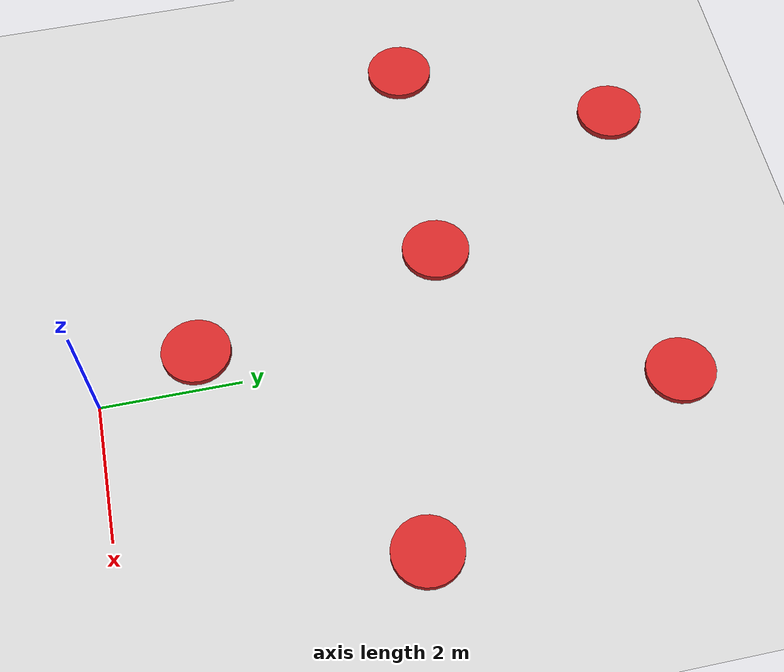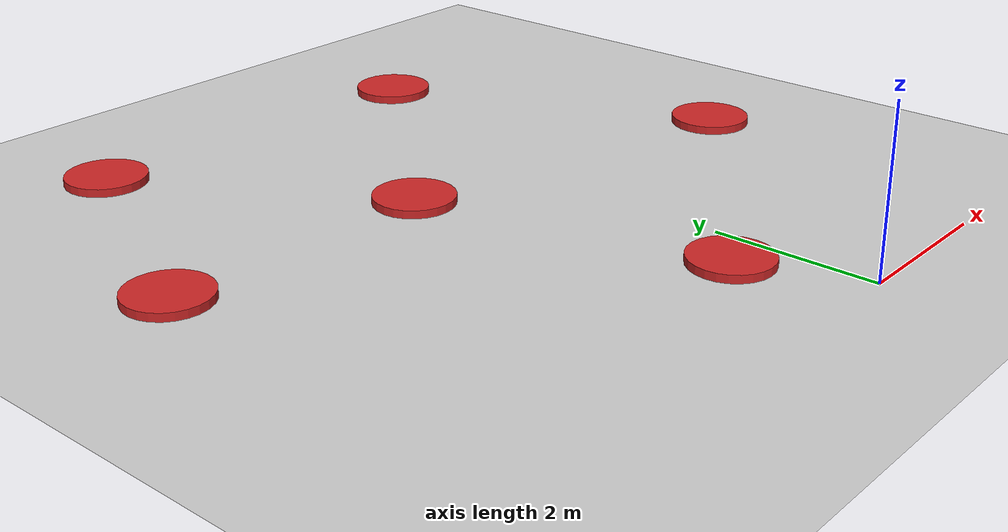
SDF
<sdf version="1.6">
 <world name="default">
  <light name="sun" type="directional">
   <pose>0 0 10 0 -0 0</pose>
   <diffuse>0.8 0.8 0.8 1</diffuse>
   <specular>0.2 0.2 0.2 1</specular>
   <attenuation>
    <range>1000</range>
    <constant>0.9</constant>
    <linear>0.01</linear>
    <quadratic>0.001</quadratic>
   </attenuation>
   <direction>-0.5 0.1 -0.9</direction>
  </light>
  <model name="ground_plane">
   <static>1</static>
   <link name="link">
    <collision name="collision">
     <geometry><plane><normal>0 0 1</normal><size>100 100</size></plane></geometry>
     <surface><friction><ode><mu>100</mu><mu2>50</mu2></ode></friction></surface>
    </collision>
    <visual name="visual">
     <cast_shadows>0</cast_shadows>
     <geometry><plane><normal>0 0 1</normal><size>100 100</size></plane></geometry>
     <material>
      <script><uri>file://media/materials/scripts/gazebo.material</uri><name>Gazebo/Grey</name></script>
     </material>
    </visual>
   </link>
  </model>
  <gravity>0 0 -9.8</gravity>
  <magnetic_field>6e-06 2.3e-05 -4.2e-05</magnetic_field>
  <atmosphere type="adiabatic"/>
  <physics name="default_physics" default="0" type="ode">
   <max_step_size>0.001</max_step_size>
   <real_time_factor>1</real_time_factor>
   <real_time_update_rate>1000</real_time_update_rate>
  </physics>
  <scene><ambient>0.4 0.4 0.4 1</ambient><background>0.7 0.7 0.7 1</background><shadows>1</shadows></scene>
  <spherical_coordinates>
   <surface_model>EARTH_WGS84</surface_model>
   <latitude_deg>0</latitude_deg>
   <longitude_deg>0</longitude_deg>
   <elevation>0</elevation>
   <heading_deg>0</heading_deg>
  </spherical_coordinates>
  <model name="unit_cylinder_0">
   <pose>2.97499 4.03015 0.05 0 -0 0</pose>
   <link name="link">
    <inertial>
     <mass>1</mass>
     <inertia><ixx>0.145833</ixx><ixy>0</ixy><ixz>0</ixz><iyy>0.145833</iyy><iyz>0</iyz><izz>0.125</izz></inertia>
    </inertial>
    <collision name="collision">
     <geometry><cylinder><radius>0.5</radius><length>0.1</length></cylinder></geometry>
    </collision>
    <visual name="visual">
     <geometry><cylinder><radius>0.5</radius><length>0.1</length></cylinder></geometry>
     <material>
      <script><name>Gazebo/Red</name><uri>file://media/materials/scripts/gazebo.material</uri></script>
     </material>
    </visual>
   </link>
  </model>
  <model name="unit_cylinder_1">
   <pose>1.09796 8.07725 0.05 0 -0 0</pose>
   <link name="link">
    <inertial>
     <mass>1</mass>
     <inertia><ixx>0.145833</ixx><ixy>0</ixy><ixz>0</ixz><iyy>0.145833</iyy><iyz>0</iyz><izz>0.125</izz></inertia>
    </inertial>
    <collision name="collision">
     <geometry><cylinder><radius>0.5</radius><length>0.1</length></cylinder></geometry>
    </collision>
    <visual name="visual">
     <geometry><cylinder><radius>0.5</radius><length>0.1</length></cylinder></geometry>
     <material>
      <script><name>Gazebo/Red</name><uri>file://media/materials/scripts/gazebo.material</uri></script>
     </material>
    </visual>
   </link>
  </model>
  <model name="unit_cylinder_2">
   <pose>-3.51953 8.35141 0.05 0 -0 0</pose>
   <link name="link">
    <inertial>
     <mass>1</mass>
     <inertia><ixx>0.145833</ixx><ixy>0</ixy><ixz>0</ixz><iyy>0.145833</iyy><iyz>0</iyz><izz>0.125</izz></inertia>
    </inertial>
    <collision name="collision">
     <geometry><cylinder><radius>0.5</radius><length>0.1</length></cylinder></geometry>
    </collision>
    <visual name="visual">
     <geometry><cylinder><radius>0.5</radius><length>0.1</length></cylinder></geometry>
     <material>
      <script><name>Gazebo/Red</name><uri>file://media/materials/scripts/gazebo.material</uri></script>
     </material>
    </visual>
   </link>
  </model>
  <model name="unit_cylinder_3">
   <pose>-4.98641 5.25835 0.05 0 -0 0</pose>
   <link name="link">
    <inertial>
     <mass>1</mass>
     <inertia><ixx>0.145833</ixx><ixy>0</ixy><ixz>0</ixz><iyy>0.145833</iyy><iyz>0</iyz><izz>0.125</izz></inertia>
    </inertial>
    <collision name="collision">
     <geometry><cylinder><radius>0.5</radius><length>0.1</length></cylinder></geometry>
    </collision>
    <visual name="visual">
     <geometry><cylinder><radius>0.5</radius><length>0.1</length></cylinder></geometry>
     <material>
      <script><name>Gazebo/Red</name><uri>file://media/materials/scripts/gazebo.material</uri></script>
     </material>
    </visual>
   </link>
  </model>
  <model name="unit_cylinder_4">
   <pose>-1.56157 5.11829 0.05 0 -0 0</pose>
   <link name="link">
    <inertial>
     <mass>1</mass>
     <inertia><ixx>0.145833</ixx><ixy>0</ixy><ixz>0</ixz><iyy>0.145833</iyy><iyz>0</iyz><izz>0.125</izz></inertia>
    </inertial>
    <collision name="collision">
     <geometry><cylinder><radius>0.5</radius><length>0.1</length></cylinder></geometry>
    </collision>
    <visual name="visual">
     <geometry><cylinder><radius>0.5</radius><length>0.1</length></cylinder></geometry>
     <material>
      <script><name>Gazebo/Red</name><uri>file://media/materials/scripts/gazebo.material</uri></script>
     </material>
    </visual>
   </link>
  </model>
  <model name="unit_cylinder_0_clone">
   <pose>-0.581486 1.42596 0.05 0 -0 0</pose>
   <link name="link">
    <inertial>
     <mass>1</mass>
     <inertia><ixx>0.145833</ixx><ixy>0</ixy><ixz>0</ixz><iyy>0.145833</iyy><iyz>0</iyz><izz>0.125</izz></inertia>
    </inertial>
    <collision name="collision">
     <geometry><cylinder><radius>0.5</radius><length>0.1</length></cylinder></geometry>
    </collision>
    <visual name="visual">
     <geometry><cylinder><radius>0.5</radius><length>0.1</length></cylinder></geometry>
     <material>
      <script><name>Gazebo/Red</name><uri>file://media/materials/scripts/gazebo.material</uri></script>
     </material>
    </visual>
   </link>
  </model>
 </world>
</sdf>
